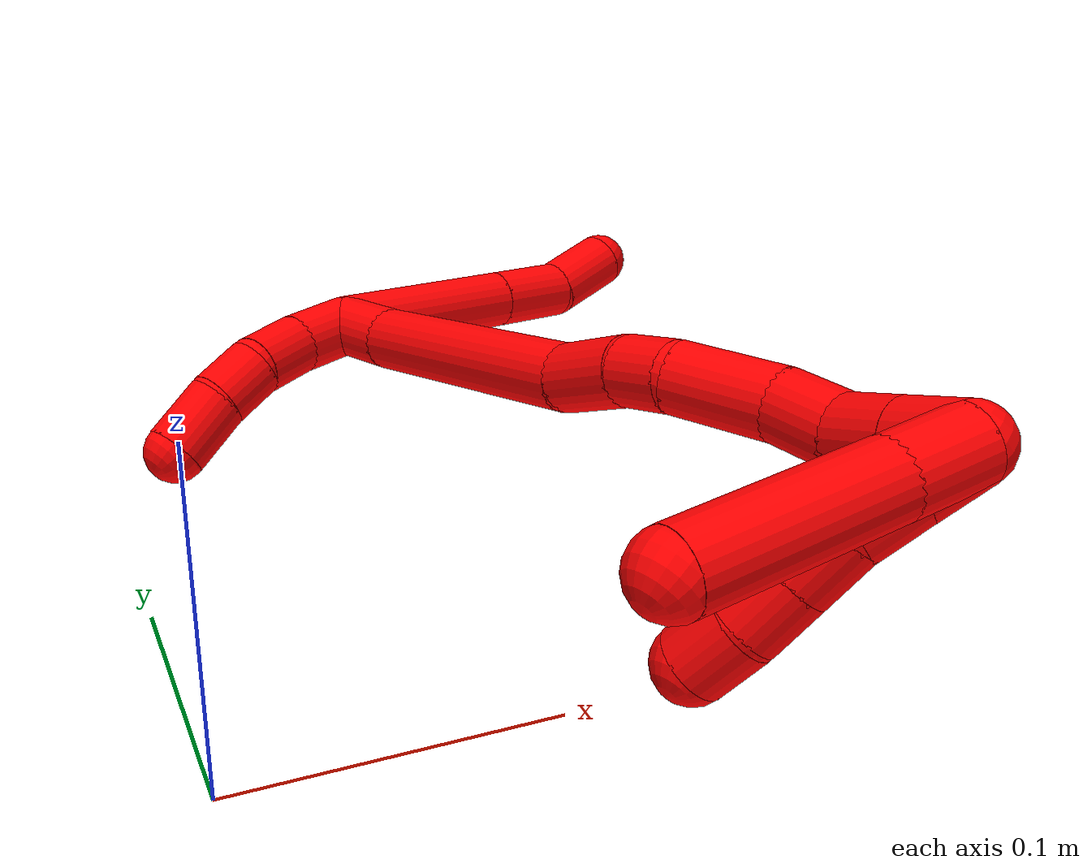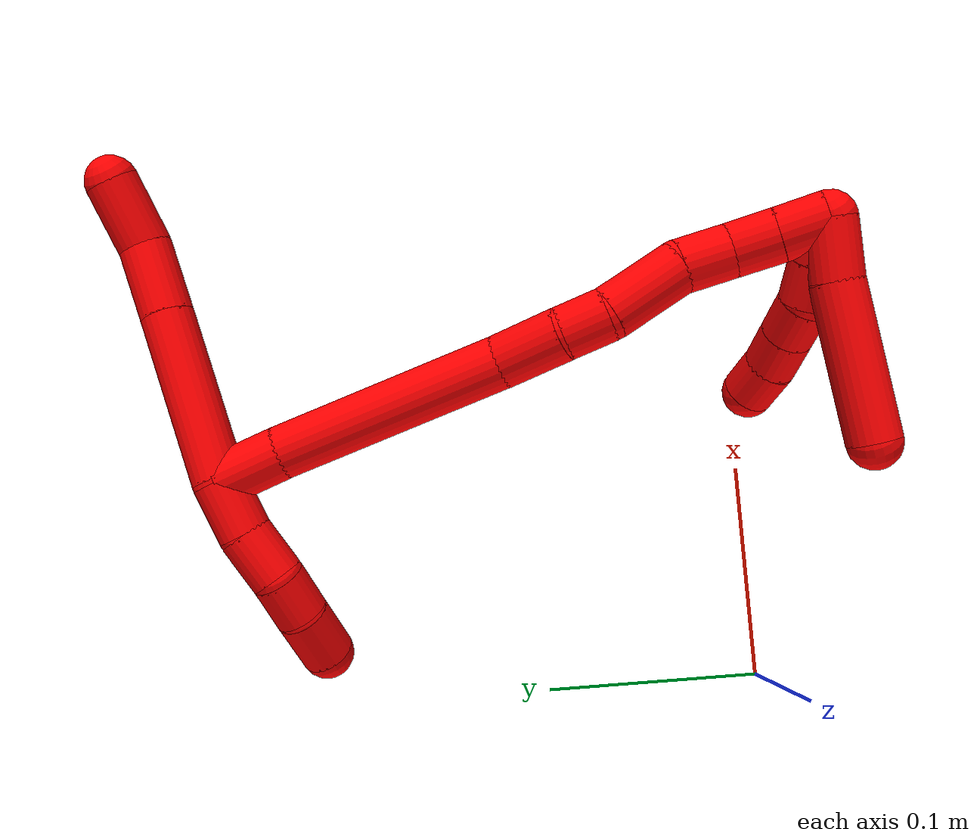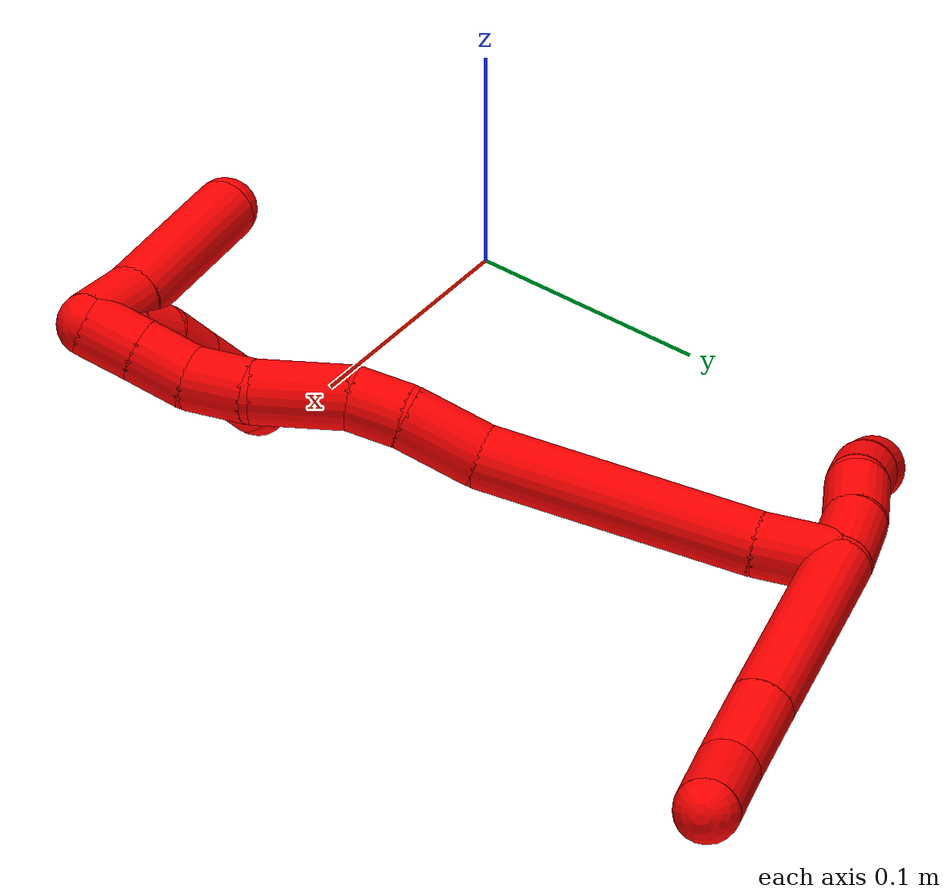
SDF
<sdf version="1.7">
 <world name="default">
  <model name="2">
   <static>0</static>
   <link name="2">
    <collision name="collision-cylinder-e_1_2_8">
     <pose>0.022768 0.006553 0.033268 -0.194476 0.591324 -0.059405</pose>
     <geometry><cylinder><radius>0.0125</radius><length>0.081684</length></cylinder></geometry>
     <surface>
      <friction><ode><mu>1.16</mu><mu2>1.16</mu2><slip1>0</slip1><slip2>0</slip2></ode></friction>
      <contact><ode><kp>1e+06</kp><kd>1</kd><max_vel>0</max_vel><min_depth>0.001</min_depth></ode></contact>
     </surface>
    </collision>
    <visual name="visual-cylinder-e_1_2_8">
     <pose>0.022768 0.006553 0.033268 -0.194476 0.591324 -0.059405</pose>
     <geometry><cylinder><radius>0.0125</radius><length>0.081684</length></cylinder></geometry>
     <material><ambient>1 0 0 1</ambient></material>
    </visual>
    <collision name="collision-cylinder-e_2_8_9">
     <pose>0.055299 0.016026 0.080822 -0.201669 0.590015 -0.061471</pose>
     <geometry><cylinder><radius>0.0125</radius><length>0.035095</length></cylinder></geometry>
     <surface>
      <friction><ode><mu>1.16</mu><mu2>1.16</mu2><slip1>0</slip1><slip2>0</slip2></ode></friction>
      <contact><ode><kp>1e+06</kp><kd>1</kd><max_vel>0</max_vel><min_depth>0.001</min_depth></ode></contact>
     </surface>
    </collision>
    <visual name="visual-cylinder-e_2_8_9">
     <pose>0.055299 0.016026 0.080822 -0.201669 0.590015 -0.061471</pose>
     <geometry><cylinder><radius>0.0125</radius><length>0.035095</length></cylinder></geometry>
     <material><ambient>1 0 0 1</ambient></material>
    </visual>
    <collision name="collision-cylinder-e_3_9_6">
     <pose>0.069575 0.021511 0.110885 -0.161127 0.27519 -0.022359</pose>
     <geometry><cylinder><radius>0.0125</radius><length>0.03322</length></cylinder></geometry>
     <surface>
      <friction><ode><mu>1.16</mu><mu2>1.16</mu2><slip1>0</slip1><slip2>0</slip2></ode></friction>
      <contact><ode><kp>1e+06</kp><kd>1</kd><max_vel>0</max_vel><min_depth>0.001</min_depth></ode></contact>
     </surface>
    </collision>
    <visual name="visual-cylinder-e_3_9_6">
     <pose>0.069575 0.021511 0.110885 -0.161127 0.27519 -0.022359</pose>
     <geometry><cylinder><radius>0.0125</radius><length>0.03322</length></cylinder></geometry>
     <material><ambient>1 0 0 1</ambient></material>
    </visual>
    <collision name="collision-cylinder-e_1_2_10">
     <pose>-0.005394 -0.003063 -0.011939 2.89044 -0.412529 -2.05585</pose>
     <geometry><cylinder><radius>0.0125</radius><length>0.026908</length></cylinder></geometry>
     <surface>
      <friction><ode><mu>1.16</mu><mu2>1.16</mu2><slip1>0</slip1><slip2>0</slip2></ode></friction>
      <contact><ode><kp>1e+06</kp><kd>1</kd><max_vel>0</max_vel><min_depth>0.001</min_depth></ode></contact>
     </surface>
    </collision>
    <visual name="visual-cylinder-e_1_2_10">
     <pose>-0.005394 -0.003063 -0.011939 2.89044 -0.412529 -2.05585</pose>
     <geometry><cylinder><radius>0.0125</radius><length>0.026908</length></cylinder></geometry>
     <material><ambient>1 0 0 1</ambient></material>
    </visual>
    <collision name="collision-cylinder-e_2_10_11">
     <pose>-0.014462 -0.010707 -0.034859 2.74638 -0.299444 -1.29137</pose>
     <geometry><cylinder><radius>0.0125</radius><length>0.024904</length></cylinder></geometry>
     <surface>
      <friction><ode><mu>1.16</mu><mu2>1.16</mu2><slip1>0</slip1><slip2>0</slip2></ode></friction>
      <contact><ode><kp>1e+06</kp><kd>1</kd><max_vel>0</max_vel><min_depth>0.001</min_depth></ode></contact>
     </surface>
    </collision>
    <visual name="visual-cylinder-e_2_10_11">
     <pose>-0.014462 -0.010707 -0.034859 2.74638 -0.299444 -1.29137</pose>
     <geometry><cylinder><radius>0.0125</radius><length>0.024904</length></cylinder></geometry>
     <material><ambient>1 0 0 1</ambient></material>
    </visual>
    <collision name="collision-cylinder-e_3_11_12">
     <pose>-0.019029 -0.01667 -0.056601 3.01391 -0.082263 -1.14399</pose>
     <geometry><cylinder><radius>0.0125</radius><length>0.021774</length></cylinder></geometry>
     <surface>
      <friction><ode><mu>1.16</mu><mu2>1.16</mu2><slip1>0</slip1><slip2>0</slip2></ode></friction>
      <contact><ode><kp>1e+06</kp><kd>1</kd><max_vel>0</max_vel><min_depth>0.001</min_depth></ode></contact>
     </surface>
    </collision>
    <visual name="visual-cylinder-e_3_11_12">
     <pose>-0.019029 -0.01667 -0.056601 3.01391 -0.082263 -1.14399</pose>
     <geometry><cylinder><radius>0.0125</radius><length>0.021774</length></cylinder></geometry>
     <material><ambient>1 0 0 1</ambient></material>
    </visual>
    <collision name="collision-cylinder-e_4_12_5">
     <pose>-0.01901 -0.018345 -0.080535 3.11928 0.06928 2.51868</pose>
     <geometry><cylinder><radius>0.0125</radius><length>0.026413</length></cylinder></geometry>
     <surface>
      <friction><ode><mu>1.16</mu><mu2>1.16</mu2><slip1>0</slip1><slip2>0</slip2></ode></friction>
      <contact><ode><kp>1e+06</kp><kd>1</kd><max_vel>0</max_vel><min_depth>0.001</min_depth></ode></contact>
     </surface>
    </collision>
    <visual name="visual-cylinder-e_4_12_5">
     <pose>-0.01901 -0.018345 -0.080535 3.11928 0.06928 2.51868</pose>
     <geometry><cylinder><radius>0.0125</radius><length>0.026413</length></cylinder></geometry>
     <material><ambient>1 0 0 1</ambient></material>
    </visual>
    <collision name="collision-cylinder-e_1_2_13">
     <pose>0.006615 -0.014182 0.000151 1.56014 0.43641 0.431927</pose>
     <geometry><cylinder><radius>0.0125</radius><length>0.031299</length></cylinder></geometry>
     <surface>
      <friction><ode><mu>1.16</mu><mu2>1.16</mu2><slip1>0</slip1><slip2>0</slip2></ode></friction>
      <contact><ode><kp>1e+06</kp><kd>1</kd><max_vel>0</max_vel><min_depth>0.001</min_depth></ode></contact>
     </surface>
    </collision>
    <visual name="visual-cylinder-e_1_2_13">
     <pose>0.006615 -0.014182 0.000151 1.56014 0.43641 0.431927</pose>
     <geometry><cylinder><radius>0.0125</radius><length>0.031299</length></cylinder></geometry>
     <material><ambient>1 0 0 1</ambient></material>
    </visual>
    <collision name="collision-cylinder-e_2_13_14">
     <pose>0.031573 -0.07953 0.000856 1.55997 0.344215 0.34058</pose>
     <geometry><cylinder><radius>0.0125</radius><length>0.108715</length></cylinder></geometry>
     <surface>
      <friction><ode><mu>1.16</mu><mu2>1.16</mu2><slip1>0</slip1><slip2>0</slip2></ode></friction>
      <contact><ode><kp>1e+06</kp><kd>1</kd><max_vel>0</max_vel><min_depth>0.001</min_depth></ode></contact>
     </surface>
    </collision>
    <visual name="visual-cylinder-e_2_13_14">
     <pose>0.031573 -0.07953 0.000856 1.55997 0.344215 0.34058</pose>
     <geometry><cylinder><radius>0.0125</radius><length>0.108715</length></cylinder></geometry>
     <material><ambient>1 0 0 1</ambient></material>
    </visual>
    <collision name="collision-cylinder-e_3_14_15">
     <pose>0.052199 -0.146233 0.003566 1.43289 0.144506 0.125888</pose>
     <geometry><cylinder><radius>0.0125</radius><length>0.031702</length></cylinder></geometry>
     <surface>
      <friction><ode><mu>1.16</mu><mu2>1.16</mu2><slip1>0</slip1><slip2>0</slip2></ode></friction>
      <contact><ode><kp>1e+06</kp><kd>1</kd><max_vel>0</max_vel><min_depth>0.001</min_depth></ode></contact>
     </surface>
    </collision>
    <visual name="visual-cylinder-e_3_14_15">
     <pose>0.052199 -0.146233 0.003566 1.43289 0.144506 0.125888</pose>
     <geometry><cylinder><radius>0.0125</radius><length>0.031702</length></cylinder></geometry>
     <material><ambient>1 0 0 1</ambient></material>
    </visual>
    <collision name="collision-cylinder-e_4_15_16">
     <pose>0.057789 -0.172085 0.006223 1.52229 0.309958 0.295495</pose>
     <geometry><cylinder><radius>0.0125</radius><length>0.02169</length></cylinder></geometry>
     <surface>
      <friction><ode><mu>1.16</mu><mu2>1.16</mu2><slip1>0</slip1><slip2>0</slip2></ode></friction>
      <contact><ode><kp>1e+06</kp><kd>1</kd><max_vel>0</max_vel><min_depth>0.001</min_depth></ode></contact>
     </surface>
    </collision>
    <visual name="visual-cylinder-e_4_15_16">
     <pose>0.057789 -0.172085 0.006223 1.52229 0.309958 0.295495</pose>
     <geometry><cylinder><radius>0.0125</radius><length>0.02169</length></cylinder></geometry>
     <material><ambient>1 0 0 1</ambient></material>
    </visual>
    <collision name="collision-cylinder-e_5_16_17">
     <pose>0.071289 -0.198078 0.008868 1.43491 0.572196 0.502522</pose>
     <geometry><cylinder><radius>0.0125</radius><length>0.037642</length></cylinder></geometry>
     <surface>
      <friction><ode><mu>1.16</mu><mu2>1.16</mu2><slip1>0</slip1><slip2>0</slip2></ode></friction>
      <contact><ode><kp>1e+06</kp><kd>1</kd><max_vel>0</max_vel><min_depth>0.001</min_depth></ode></contact>
     </surface>
    </collision>
    <visual name="visual-cylinder-e_5_16_17">
     <pose>0.071289 -0.198078 0.008868 1.43491 0.572196 0.502522</pose>
     <geometry><cylinder><radius>0.0125</radius><length>0.037642</length></cylinder></geometry>
     <material><ambient>1 0 0 1</ambient></material>
    </visual>
    <collision name="collision-cylinder-e_6_17_18">
     <pose>0.086804 -0.224753 0.009418 1.71463 0.446799 0.513355</pose>
     <geometry><cylinder><radius>0.0125</radius><length>0.024644</length></cylinder></geometry>
     <surface>
      <friction><ode><mu>1.16</mu><mu2>1.16</mu2><slip1>0</slip1><slip2>0</slip2></ode></friction>
      <contact><ode><kp>1e+06</kp><kd>1</kd><max_vel>0</max_vel><min_depth>0.001</min_depth></ode></contact>
     </surface>
    </collision>
    <visual name="visual-cylinder-e_6_17_18">
     <pose>0.086804 -0.224753 0.009418 1.71463 0.446799 0.513355</pose>
     <geometry><cylinder><radius>0.0125</radius><length>0.024644</length></cylinder></geometry>
     <material><ambient>1 0 0 1</ambient></material>
    </visual>
    <collision name="collision-cylinder-e_7_18_19">
     <pose>0.093965 -0.246765 0.007838 1.56961 0.165216 0.165022</pose>
     <geometry><cylinder><radius>0.0125</radius><length>0.022332</length></cylinder></geometry>
     <surface>
      <friction><ode><mu>1.16</mu><mu2>1.16</mu2><slip1>0</slip1><slip2>0</slip2></ode></friction>
      <contact><ode><kp>1e+06</kp><kd>1</kd><max_vel>0</max_vel><min_depth>0.001</min_depth></ode></contact>
     </surface>
    </collision>
    <visual name="visual-cylinder-e_7_18_19">
     <pose>0.093965 -0.246765 0.007838 1.56961 0.165216 0.165022</pose>
     <geometry><cylinder><radius>0.0125</radius><length>0.022332</length></cylinder></geometry>
     <material><ambient>1 0 0 1</ambient></material>
    </visual>
    <collision name="collision-cylinder-e_8_19_1">
     <pose>0.097716 -0.268598 0.008015 1.5557 0.175195 0.172584</pose>
     <geometry><cylinder><radius>0.0125</radius><length>0.021976</length></cylinder></geometry>
     <surface>
      <friction><ode><mu>1.16</mu><mu2>1.16</mu2><slip1>0</slip1><slip2>0</slip2></ode></friction>
      <contact><ode><kp>1e+06</kp><kd>1</kd><max_vel>0</max_vel><min_depth>0.001</min_depth></ode></contact>
     </surface>
    </collision>
    <visual name="visual-cylinder-e_8_19_1">
     <pose>0.097716 -0.268598 0.008015 1.5557 0.175195 0.172584</pose>
     <geometry><cylinder><radius>0.0125</radius><length>0.021976</length></cylinder></geometry>
     <material><ambient>1 0 0 1</ambient></material>
    </visual>
    <collision name="collision-cylinder-e_1_1_20">
     <pose>0.098327 -0.274726 -0.000557 -2.64883 -0.130847 0.509702</pose>
     <geometry><cylinder><radius>0.0125</radius><length>0.02</length></cylinder></geometry>
     <surface>
      <friction><ode><mu>1.16</mu><mu2>1.16</mu2><slip1>0</slip1><slip2>0</slip2></ode></friction>
      <contact><ode><kp>1e+06</kp><kd>1</kd><max_vel>0</max_vel><min_depth>0.001</min_depth></ode></contact>
     </surface>
    </collision>
    <visual name="visual-cylinder-e_1_1_20">
     <pose>0.098327 -0.274726 -0.000557 -2.64883 -0.130847 0.509702</pose>
     <geometry><cylinder><radius>0.0125</radius><length>0.02</length></cylinder></geometry>
     <material><ambient>1 0 0 1</ambient></material>
    </visual>
    <collision name="collision-cylinder-e_2_20_21">
     <pose>0.09579 -0.265413 -0.018073 -2.65696 -0.123503 0.490239</pose>
     <geometry><cylinder><radius>0.0125</radius><length>0.02</length></cylinder></geometry>
     <surface>
      <friction><ode><mu>1.16</mu><mu2>1.16</mu2><slip1>0</slip1><slip2>0</slip2></ode></friction>
      <contact><ode><kp>1e+06</kp><kd>1</kd><max_vel>0</max_vel><min_depth>0.001</min_depth></ode></contact>
     </surface>
    </collision>
    <visual name="visual-cylinder-e_2_20_21">
     <pose>0.09579 -0.265413 -0.018073 -2.65696 -0.123503 0.490239</pose>
     <geometry><cylinder><radius>0.0125</radius><length>0.02</length></cylinder></geometry>
     <material><ambient>1 0 0 1</ambient></material>
    </visual>
    <collision name="collision-cylinder-e_3_21_22">
     <pose>0.096083 -0.254809 -0.034723 -2.4917 0.153098 -0.447707</pose>
     <geometry><cylinder><radius>0.0125</radius><length>0.02</length></cylinder></geometry>
     <surface>
      <friction><ode><mu>1.16</mu><mu2>1.16</mu2><slip1>0</slip1><slip2>0</slip2></ode></friction>
      <contact><ode><kp>1e+06</kp><kd>1</kd><max_vel>0</max_vel><min_depth>0.001</min_depth></ode></contact>
     </surface>
    </collision>
    <visual name="visual-cylinder-e_3_21_22">
     <pose>0.096083 -0.254809 -0.034723 -2.4917 0.153098 -0.447707</pose>
     <geometry><cylinder><radius>0.0125</radius><length>0.02</length></cylinder></geometry>
     <material><ambient>1 0 0 1</ambient></material>
    </visual>
    <collision name="collision-cylinder-e_4_22_23">
     <pose>0.099102 -0.242855 -0.05047 -2.49288 0.149965 -0.439633</pose>
     <geometry><cylinder><radius>0.0125</radius><length>0.02</length></cylinder></geometry>
     <surface>
      <friction><ode><mu>1.16</mu><mu2>1.16</mu2><slip1>0</slip1><slip2>0</slip2></ode></friction>
      <contact><ode><kp>1e+06</kp><kd>1</kd><max_vel>0</max_vel><min_depth>0.001</min_depth></ode></contact>
     </surface>
    </collision>
    <visual name="visual-cylinder-e_4_22_23">
     <pose>0.099102 -0.242855 -0.05047 -2.49288 0.149965 -0.439633</pose>
     <geometry><cylinder><radius>0.0125</radius><length>0.02</length></cylinder></geometry>
     <material><ambient>1 0 0 1</ambient></material>
    </visual>
    <collision name="collision-cylinder-e_5_23_4">
     <pose>0.101868 -0.229725 -0.065217 -2.33564 0.12757 -0.29744</pose>
     <geometry><cylinder><radius>0.0125</radius><length>0.02</length></cylinder></geometry>
     <surface>
      <friction><ode><mu>1.16</mu><mu2>1.16</mu2><slip1>0</slip1><slip2>0</slip2></ode></friction>
      <contact><ode><kp>1e+06</kp><kd>1</kd><max_vel>0</max_vel><min_depth>0.001</min_depth></ode></contact>
     </surface>
    </collision>
    <visual name="visual-cylinder-e_5_23_4">
     <pose>0.101868 -0.229725 -0.065217 -2.33564 0.12757 -0.29744</pose>
     <geometry><cylinder><radius>0.0125</radius><length>0.02</length></cylinder></geometry>
     <material><ambient>1 0 0 1</ambient></material>
    </visual>
    <collision name="collision-cylinder-e_1_1_24">
     <pose>0.09327 -0.278142 -0.004235 -3.03925 -0.471471 2.72143</pose>
     <geometry><cylinder><radius>0.0125</radius><length>0.028013</length></cylinder></geometry>
     <surface>
      <friction><ode><mu>1.16</mu><mu2>1.16</mu2><slip1>0</slip1><slip2>0</slip2></ode></friction>
      <contact><ode><kp>1e+06</kp><kd>1</kd><max_vel>0</max_vel><min_depth>0.001</min_depth></ode></contact>
     </surface>
    </collision>
    <visual name="visual-cylinder-e_1_1_24">
     <pose>0.09327 -0.278142 -0.004235 -3.03925 -0.471471 2.72143</pose>
     <geometry><cylinder><radius>0.0125</radius><length>0.028013</length></cylinder></geometry>
     <material><ambient>1 0 0 1</ambient></material>
    </visual>
    <collision name="collision-cylinder-e_2_24_3">
     <pose>0.069353 -0.277601 -0.048061 3.11823 -0.509493 -3.05192</pose>
     <geometry><cylinder><radius>0.0125</radius><length>0.071987</length></cylinder></geometry>
     <surface>
      <friction><ode><mu>1.16</mu><mu2>1.16</mu2><slip1>0</slip1><slip2>0</slip2></ode></friction>
      <contact><ode><kp>1e+06</kp><kd>1</kd><max_vel>0</max_vel><min_depth>0.001</min_depth></ode></contact>
     </surface>
    </collision>
    <visual name="visual-cylinder-e_2_24_3">
     <pose>0.069353 -0.277601 -0.048061 3.11823 -0.509493 -3.05192</pose>
     <geometry><cylinder><radius>0.0125</radius><length>0.071987</length></cylinder></geometry>
     <material><ambient>1 0 0 1</ambient></material>
    </visual>
    <collision name="collision-sphere-3">
     <pose>0.051797 -0.278335 -0.079475 0 -0 0</pose>
     <geometry><sphere><radius>0.0125</radius></sphere></geometry>
     <surface>
      <friction><ode><mu>1.16</mu><mu2>1.16</mu2><slip1>0</slip1><slip2>0</slip2></ode></friction>
      <contact><ode><kp>1e+06</kp><kd>1</kd><max_vel>0</max_vel><min_depth>0.001</min_depth></ode></contact>
     </surface>
    </collision>
    <visual name="visual-sphere-3">
     <pose>0.051797 -0.278335 -0.079475 0 -0 0</pose>
     <geometry><sphere><radius>0.0125</radius></sphere></geometry>
     <material><ambient>1 0 0 1</ambient></material>
    </visual>
    <collision name="collision-sphere-24">
     <pose>0.086908 -0.276867 -0.016648 0 -0 0</pose>
     <geometry><sphere><radius>0.0125</radius></sphere></geometry>
     <surface>
      <friction><ode><mu>1.16</mu><mu2>1.16</mu2><slip1>0</slip1><slip2>0</slip2></ode></friction>
      <contact><ode><kp>1e+06</kp><kd>1</kd><max_vel>0</max_vel><min_depth>0.001</min_depth></ode></contact>
     </surface>
    </collision>
    <visual name="visual-sphere-24">
     <pose>0.086908 -0.276867 -0.016648 0 -0 0</pose>
     <geometry><sphere><radius>0.0125</radius></sphere></geometry>
     <material><ambient>1 0 0 1</ambient></material>
    </visual>
    <collision name="collision-sphere-4">
     <pose>0.103141 -0.222569 -0.072085 0 -0 0</pose>
     <geometry><sphere><radius>0.0125</radius></sphere></geometry>
     <surface>
      <friction><ode><mu>1.16</mu><mu2>1.16</mu2><slip1>0</slip1><slip2>0</slip2></ode></friction>
      <contact><ode><kp>1e+06</kp><kd>1</kd><max_vel>0</max_vel><min_depth>0.001</min_depth></ode></contact>
     </surface>
    </collision>
    <visual name="visual-sphere-4">
     <pose>0.103141 -0.222569 -0.072085 0 -0 0</pose>
     <geometry><sphere><radius>0.0125</radius></sphere></geometry>
     <material><ambient>1 0 0 1</ambient></material>
    </visual>
    <collision name="collision-sphere-23">
     <pose>0.100596 -0.236881 -0.058349 0 -0 0</pose>
     <geometry><sphere><radius>0.0125</radius></sphere></geometry>
     <surface>
      <friction><ode><mu>1.16</mu><mu2>1.16</mu2><slip1>0</slip1><slip2>0</slip2></ode></friction>
      <contact><ode><kp>1e+06</kp><kd>1</kd><max_vel>0</max_vel><min_depth>0.001</min_depth></ode></contact>
     </surface>
    </collision>
    <visual name="visual-sphere-23">
     <pose>0.100596 -0.236881 -0.058349 0 -0 0</pose>
     <geometry><sphere><radius>0.0125</radius></sphere></geometry>
     <material><ambient>1 0 0 1</ambient></material>
    </visual>
    <collision name="collision-sphere-22">
     <pose>0.097608 -0.248829 -0.042591 0 -0 0</pose>
     <geometry><sphere><radius>0.0125</radius></sphere></geometry>
     <surface>
      <friction><ode><mu>1.16</mu><mu2>1.16</mu2><slip1>0</slip1><slip2>0</slip2></ode></friction>
      <contact><ode><kp>1e+06</kp><kd>1</kd><max_vel>0</max_vel><min_depth>0.001</min_depth></ode></contact>
     </surface>
    </collision>
    <visual name="visual-sphere-22">
     <pose>0.097608 -0.248829 -0.042591 0 -0 0</pose>
     <geometry><sphere><radius>0.0125</radius></sphere></geometry>
     <material><ambient>1 0 0 1</ambient></material>
    </visual>
    <collision name="collision-sphere-21">
     <pose>0.094558 -0.260789 -0.026854 0 -0 0</pose>
     <geometry><sphere><radius>0.0125</radius></sphere></geometry>
     <surface>
      <friction><ode><mu>1.16</mu><mu2>1.16</mu2><slip1>0</slip1><slip2>0</slip2></ode></friction>
      <contact><ode><kp>1e+06</kp><kd>1</kd><max_vel>0</max_vel><min_depth>0.001</min_depth></ode></contact>
     </surface>
    </collision>
    <visual name="visual-sphere-21">
     <pose>0.094558 -0.260789 -0.026854 0 -0 0</pose>
     <geometry><sphere><radius>0.0125</radius></sphere></geometry>
     <material><ambient>1 0 0 1</ambient></material>
    </visual>
    <collision name="collision-sphere-20">
     <pose>0.097022 -0.270036 -0.009292 0 -0 0</pose>
     <geometry><sphere><radius>0.0125</radius></sphere></geometry>
     <surface>
      <friction><ode><mu>1.16</mu><mu2>1.16</mu2><slip1>0</slip1><slip2>0</slip2></ode></friction>
      <contact><ode><kp>1e+06</kp><kd>1</kd><max_vel>0</max_vel><min_depth>0.001</min_depth></ode></contact>
     </surface>
    </collision>
    <visual name="visual-sphere-20">
     <pose>0.097022 -0.270036 -0.009292 0 -0 0</pose>
     <geometry><sphere><radius>0.0125</radius></sphere></geometry>
     <material><ambient>1 0 0 1</ambient></material>
    </visual>
    <collision name="collision-sphere-11">
     <pose>-0.018135 -0.015288 -0.045839 0 -0 0</pose>
     <geometry><sphere><radius>0.0125</radius></sphere></geometry>
     <surface>
      <friction><ode><mu>1.16</mu><mu2>1.16</mu2><slip1>0</slip1><slip2>0</slip2></ode></friction>
      <contact><ode><kp>1e+06</kp><kd>1</kd><max_vel>0</max_vel><min_depth>0.001</min_depth></ode></contact>
     </surface>
    </collision>
    <visual name="visual-sphere-11">
     <pose>-0.018135 -0.015288 -0.045839 0 -0 0</pose>
     <geometry><sphere><radius>0.0125</radius></sphere></geometry>
     <material><ambient>1 0 0 1</ambient></material>
    </visual>
    <collision name="collision-sphere-10">
     <pose>-0.010788 -0.006126 -0.023878 0 -0 0</pose>
     <geometry><sphere><radius>0.0125</radius></sphere></geometry>
     <surface>
      <friction><ode><mu>1.16</mu><mu2>1.16</mu2><slip1>0</slip1><slip2>0</slip2></ode></friction>
      <contact><ode><kp>1e+06</kp><kd>1</kd><max_vel>0</max_vel><min_depth>0.001</min_depth></ode></contact>
     </surface>
    </collision>
    <visual name="visual-sphere-10">
     <pose>-0.010788 -0.006126 -0.023878 0 -0 0</pose>
     <geometry><sphere><radius>0.0125</radius></sphere></geometry>
     <material><ambient>1 0 0 1</ambient></material>
    </visual>
    <collision name="collision-sphere-6">
     <pose>0.074089 0.024076 0.126663 0 -0 0</pose>
     <geometry><sphere><radius>0.0125</radius></sphere></geometry>
     <surface>
      <friction><ode><mu>1.16</mu><mu2>1.16</mu2><slip1>0</slip1><slip2>0</slip2></ode></friction>
      <contact><ode><kp>1e+06</kp><kd>1</kd><max_vel>0</max_vel><min_depth>0.001</min_depth></ode></contact>
     </surface>
    </collision>
    <visual name="visual-sphere-6">
     <pose>0.074089 0.024076 0.126663 0 -0 0</pose>
     <geometry><sphere><radius>0.0125</radius></sphere></geometry>
     <material><ambient>1 0 0 1</ambient></material>
    </visual>
    <collision name="collision-sphere-9">
     <pose>0.065062 0.018947 0.095107 0 -0 0</pose>
     <geometry><sphere><radius>0.0125</radius></sphere></geometry>
     <surface>
      <friction><ode><mu>1.16</mu><mu2>1.16</mu2><slip1>0</slip1><slip2>0</slip2></ode></friction>
      <contact><ode><kp>1e+06</kp><kd>1</kd><max_vel>0</max_vel><min_depth>0.001</min_depth></ode></contact>
     </surface>
    </collision>
    <visual name="visual-sphere-9">
     <pose>0.065062 0.018947 0.095107 0 -0 0</pose>
     <geometry><sphere><radius>0.0125</radius></sphere></geometry>
     <material><ambient>1 0 0 1</ambient></material>
    </visual>
    <collision name="collision-sphere-2">
     <geometry><sphere><radius>0.0125</radius></sphere></geometry>
     <surface>
      <friction><ode><mu>1.16</mu><mu2>1.16</mu2><slip1>0</slip1><slip2>0</slip2></ode></friction>
      <contact><ode><kp>1e+06</kp><kd>1</kd><max_vel>0</max_vel><min_depth>0.001</min_depth></ode></contact>
     </surface>
    </collision>
    <visual name="visual-sphere-2">
     <geometry><sphere><radius>0.0125</radius></sphere></geometry>
     <material><ambient>1 0 0 1</ambient></material>
    </visual>
    <collision name="collision-sphere-19">
     <pose>0.095801 -0.257779 0.007851 0 -0 0</pose>
     <geometry><sphere><radius>0.0125</radius></sphere></geometry>
     <surface>
      <friction><ode><mu>1.16</mu><mu2>1.16</mu2><slip1>0</slip1><slip2>0</slip2></ode></friction>
      <contact><ode><kp>1e+06</kp><kd>1</kd><max_vel>0</max_vel><min_depth>0.001</min_depth></ode></contact>
     </surface>
    </collision>
    <visual name="visual-sphere-19">
     <pose>0.095801 -0.257779 0.007851 0 -0 0</pose>
     <geometry><sphere><radius>0.0125</radius></sphere></geometry>
     <material><ambient>1 0 0 1</ambient></material>
    </visual>
    <collision name="collision-sphere-8">
     <pose>0.045536 0.013105 0.066536 0 -0 0</pose>
     <geometry><sphere><radius>0.0125</radius></sphere></geometry>
     <surface>
      <friction><ode><mu>1.16</mu><mu2>1.16</mu2><slip1>0</slip1><slip2>0</slip2></ode></friction>
      <contact><ode><kp>1e+06</kp><kd>1</kd><max_vel>0</max_vel><min_depth>0.001</min_depth></ode></contact>
     </surface>
    </collision>
    <visual name="visual-sphere-8">
     <pose>0.045536 0.013105 0.066536 0 -0 0</pose>
     <geometry><sphere><radius>0.0125</radius></sphere></geometry>
     <material><ambient>1 0 0 1</ambient></material>
    </visual>
    <collision name="collision-sphere-12">
     <pose>-0.019924 -0.018051 -0.067363 0 -0 0</pose>
     <geometry><sphere><radius>0.0125</radius></sphere></geometry>
     <surface>
      <friction><ode><mu>1.16</mu><mu2>1.16</mu2><slip1>0</slip1><slip2>0</slip2></ode></friction>
      <contact><ode><kp>1e+06</kp><kd>1</kd><max_vel>0</max_vel><min_depth>0.001</min_depth></ode></contact>
     </surface>
    </collision>
    <visual name="visual-sphere-12">
     <pose>-0.019924 -0.018051 -0.067363 0 -0 0</pose>
     <geometry><sphere><radius>0.0125</radius></sphere></geometry>
     <material><ambient>1 0 0 1</ambient></material>
    </visual>
    <collision name="collision-sphere-5">
     <pose>-0.018095 -0.018639 -0.093706 0 -0 0</pose>
     <geometry><sphere><radius>0.0125</radius></sphere></geometry>
     <surface>
      <friction><ode><mu>1.16</mu><mu2>1.16</mu2><slip1>0</slip1><slip2>0</slip2></ode></friction>
      <contact><ode><kp>1e+06</kp><kd>1</kd><max_vel>0</max_vel><min_depth>0.001</min_depth></ode></contact>
     </surface>
    </collision>
    <visual name="visual-sphere-5">
     <pose>-0.018095 -0.018639 -0.093706 0 -0 0</pose>
     <geometry><sphere><radius>0.0125</radius></sphere></geometry>
     <material><ambient>1 0 0 1</ambient></material>
    </visual>
    <collision name="collision-sphere-13">
     <pose>0.01323 -0.028364 0.000302 0 -0 0</pose>
     <geometry><sphere><radius>0.0125</radius></sphere></geometry>
     <surface>
      <friction><ode><mu>1.16</mu><mu2>1.16</mu2><slip1>0</slip1><slip2>0</slip2></ode></friction>
      <contact><ode><kp>1e+06</kp><kd>1</kd><max_vel>0</max_vel><min_depth>0.001</min_depth></ode></contact>
     </surface>
    </collision>
    <visual name="visual-sphere-13">
     <pose>0.01323 -0.028364 0.000302 0 -0 0</pose>
     <geometry><sphere><radius>0.0125</radius></sphere></geometry>
     <material><ambient>1 0 0 1</ambient></material>
    </visual>
    <collision name="collision-sphere-14">
     <pose>0.049917 -0.130696 0.00141 0 -0 0</pose>
     <geometry><sphere><radius>0.0125</radius></sphere></geometry>
     <surface>
      <friction><ode><mu>1.16</mu><mu2>1.16</mu2><slip1>0</slip1><slip2>0</slip2></ode></friction>
      <contact><ode><kp>1e+06</kp><kd>1</kd><max_vel>0</max_vel><min_depth>0.001</min_depth></ode></contact>
     </surface>
    </collision>
    <visual name="visual-sphere-14">
     <pose>0.049917 -0.130696 0.00141 0 -0 0</pose>
     <geometry><sphere><radius>0.0125</radius></sphere></geometry>
     <material><ambient>1 0 0 1</ambient></material>
    </visual>
    <collision name="collision-sphere-15">
     <pose>0.054482 -0.161769 0.005723 0 -0 0</pose>
     <geometry><sphere><radius>0.0125</radius></sphere></geometry>
     <surface>
      <friction><ode><mu>1.16</mu><mu2>1.16</mu2><slip1>0</slip1><slip2>0</slip2></ode></friction>
      <contact><ode><kp>1e+06</kp><kd>1</kd><max_vel>0</max_vel><min_depth>0.001</min_depth></ode></contact>
     </surface>
    </collision>
    <visual name="visual-sphere-15">
     <pose>0.054482 -0.161769 0.005723 0 -0 0</pose>
     <geometry><sphere><radius>0.0125</radius></sphere></geometry>
     <material><ambient>1 0 0 1</ambient></material>
    </visual>
    <collision name="collision-sphere-16">
     <pose>0.061097 -0.182401 0.006724 0 -0 0</pose>
     <geometry><sphere><radius>0.0125</radius></sphere></geometry>
     <surface>
      <friction><ode><mu>1.16</mu><mu2>1.16</mu2><slip1>0</slip1><slip2>0</slip2></ode></friction>
      <contact><ode><kp>1e+06</kp><kd>1</kd><max_vel>0</max_vel><min_depth>0.001</min_depth></ode></contact>
     </surface>
    </collision>
    <visual name="visual-sphere-16">
     <pose>0.061097 -0.182401 0.006724 0 -0 0</pose>
     <geometry><sphere><radius>0.0125</radius></sphere></geometry>
     <material><ambient>1 0 0 1</ambient></material>
    </visual>
    <collision name="collision-sphere-17">
     <pose>0.08148 -0.213755 0.011011 0 -0 0</pose>
     <geometry><sphere><radius>0.0125</radius></sphere></geometry>
     <surface>
      <friction><ode><mu>1.16</mu><mu2>1.16</mu2><slip1>0</slip1><slip2>0</slip2></ode></friction>
      <contact><ode><kp>1e+06</kp><kd>1</kd><max_vel>0</max_vel><min_depth>0.001</min_depth></ode></contact>
     </surface>
    </collision>
    <visual name="visual-sphere-17">
     <pose>0.08148 -0.213755 0.011011 0 -0 0</pose>
     <geometry><sphere><radius>0.0125</radius></sphere></geometry>
     <material><ambient>1 0 0 1</ambient></material>
    </visual>
    <collision name="collision-sphere-18">
     <pose>0.092128 -0.235751 0.007825 0 -0 0</pose>
     <geometry><sphere><radius>0.0125</radius></sphere></geometry>
     <surface>
      <friction><ode><mu>1.16</mu><mu2>1.16</mu2><slip1>0</slip1><slip2>0</slip2></ode></friction>
      <contact><ode><kp>1e+06</kp><kd>1</kd><max_vel>0</max_vel><min_depth>0.001</min_depth></ode></contact>
     </surface>
    </collision>
    <visual name="visual-sphere-18">
     <pose>0.092128 -0.235751 0.007825 0 -0 0</pose>
     <geometry><sphere><radius>0.0125</radius></sphere></geometry>
     <material><ambient>1 0 0 1</ambient></material>
    </visual>
    <collision name="collision-sphere-1">
     <pose>0.099631 -0.279416 0.008178 0 -0 0</pose>
     <geometry><sphere><radius>0.0125</radius></sphere></geometry>
     <surface>
      <friction><ode><mu>1.16</mu><mu2>1.16</mu2><slip1>0</slip1><slip2>0</slip2></ode></friction>
      <contact><ode><kp>1e+06</kp><kd>1</kd><max_vel>0</max_vel><min_depth>0.001</min_depth></ode></contact>
     </surface>
    </collision>
    <visual name="visual-sphere-1">
     <pose>0.099631 -0.279416 0.008178 0 -0 0</pose>
     <geometry><sphere><radius>0.0125</radius></sphere></geometry>
     <material><ambient>1 0 0 1</ambient></material>
    </visual>
    <inertial>
     <pose>0.050313 -0.125836 -0.001344 0 -0 0</pose>
     <mass>0.75</mass>
     <inertia>
      <ixx>0.000179</ixx>
      <ixy>0</ixy>
      <ixz>0</ixz>
      <iyy>0.000124</iyy>
      <iyz>0</iyz>
      <izz>4.6e-05</izz>
     </inertia>
    </inertial>
   </link>
   <pose>0.109892 0.245729 0.042447 -0.619197 0.844132 -0.392089</pose>
  </model>
 </world>
</sdf>
